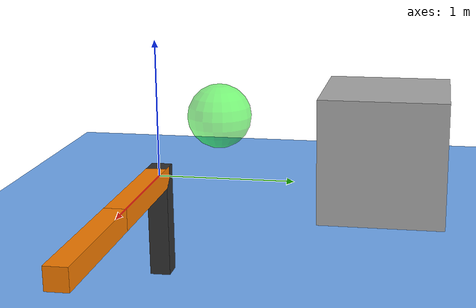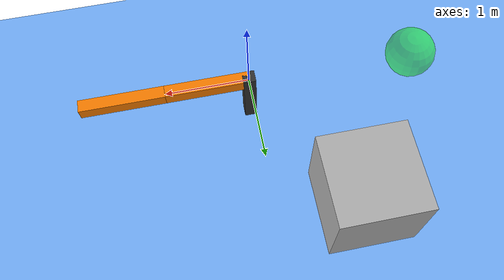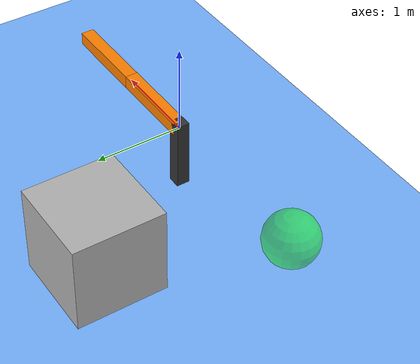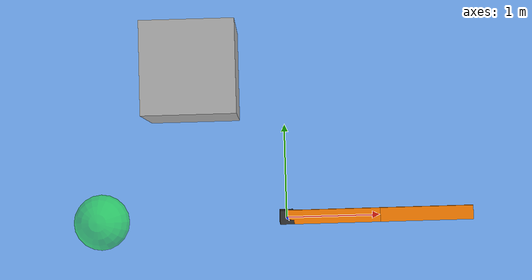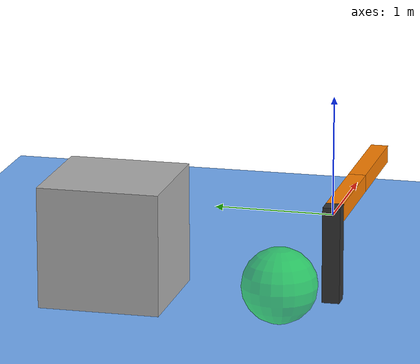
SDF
<?xml version="1.0" ?>
<sdf version='1.6'>
<world name='world'>
    <physics type="ode">
      <max_step_size>0.004</max_step_size>
      <max_contacts>5</max_contacts>
      <ode>
        <solver>
          <iters>25</iters>
          <type>world</type>
          <sor>1.3</sor>
          <use_dynamic_moi_rescaling>0</use_dynamic_moi_rescaling>
        </solver>
        <constraints>
          <cfm>0.0</cfm>
          <contact_surface_layer>0.0</contact_surface_layer>
        </constraints>
      </ode>
    </physics>

    <!-- The sphere-shaped goal area the robot has to reach -->
    <model name='GoalArea'>
      <pose frame=''>-2.0 0.0 0.0 0 -0 0</pose>
      <static>1</static>
      <link name='GoalArea_link'>
        <visual name='GoalArea_visual'>
          <pose>0 0 0 0 0 0</pose>
          <geometry>
            <sphere>
              <radius>0.3</radius>
            </sphere>
          </geometry>
          <material>
            <ambient>0 1 0 0.5</ambient>
          </material>
        </visual>
        <self_collide>0</self_collide>
        <kinematic>0</kinematic>
      </link>
    </model>

    <include>
      <uri>model://2DOFManipulator</uri>
      <pose>0.0 0.0 0.0 0 0 0</pose>
    </include>

  <model name="floor">
      <pose frame=''>0 0 -0.75 0 0 0</pose>
      <static>1</static>
      <link name="floorlink">
      <visual name="floorvisual">
        <geometry>
          <box>
            <size>100 100 0.005</size>
          </box>
        </geometry>
        <material>
            <ambient>0.46274509803921568627 0.6980392156862745098 1 1.0</ambient>
          </material>
      </visual>
      <collision name="floorcollision">
        <geometry>
          <box>
            <size>10 10 0.005</size>
          </box>
        </geometry>
      </collision>
    </link>
  </model>

  <model name="base">
      <pose frame=''>0 0 -0.425 0 0 0</pose>
      <static>1</static>
      <link name="baselink">
      <visual name="basevisual">
        <geometry>
          <box>
            <size>0.15 0.15 1</size>
          </box>
        </geometry>
        <material>
          <ambient>0.2 0.2 0.2 1.0</ambient>
        </material>
      </visual>
    </link>
  </model>

  <model name="box1">
      <pose frame=''>-1.0 1.6 0.0 0 0 0</pose>
      <static>1</static>
      <link name="box1link">
      <visual name="box1visual">
        <geometry>
          <box>
            <size>1 1 1</size>
          </box>
        </geometry>
        <material>
          <ambient>0.7 0.7 0.7 1.0</ambient>
        </material>
      </visual>
      <collision name="box1collision">
        <geometry>
          <box>
            <size>1 1 1</size>
          </box>
        </geometry>
      </collision>
    </link>
  </model>
</world>
</sdf>

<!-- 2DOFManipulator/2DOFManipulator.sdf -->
<sdf version='1.6'>
  <model name='2DOFManipulator'>
    <link name="link1">
      <pose frame=''>0 0 0 0 0 0</pose>
      <inertial>
        <pose frame='link1'>0.5 0 0 0 0 0</pose>
        <mass>1.0</mass>
        <inertia>
          <ixx>0.005</ixx>
          <ixy>0.</ixy>
          <ixz>0.0</ixz>
          <iyy>0.006</iyy>
          <izz>0.003</izz>
        </inertia>
      </inertial>
      <collision name='link1_collision'>
        <pose frame=''>0.5 0 0 0 0 0</pose>
        <geometry>
          <box>
            <size>1 0.15 0.15</size>
          </box>
        </geometry>
      </collision>
      <visual name='link1_visual'>
        <pose frame=''>0.5 0 0 0 0 0</pose>
        <geometry>
          <box>
            <size>1 0.15 0.15</size>
          </box>
        </geometry>
        <material>
          <ambient>1.0 0.5019607843137254902 0 1.0</ambient>
        </material>
      </visual>
      <self_collide>0</self_collide>
    </link>

    <link name="link2">
      <pose frame=''>1 0 0 0 0 0</pose>
      <inertial>
        <pose frame='link2'>0.5 0 0 0 0 0</pose>
        <mass>1.0</mass>
        <inertia>
          <ixx>0.005</ixx>
          <ixy>0.</ixy>
          <ixz>0.0</ixz>
          <iyy>0.006</iyy>
          <izz>0.003</izz>
        </inertia>
      </inertial>
      <collision name='link2_collision'>
        <pose frame=''>0.5 0 0 0 0 0</pose>
        <geometry>
          <box>
            <size>1 0.15 0.15</size>
          </box>
        </geometry>
      </collision>
      <visual name='link2_visual'>
        <pose frame=''>0.5 0 0 0 0 0</pose>
        <geometry>
          <box>
            <size>1 0.15 0.15</size>
          </box>
        </geometry>
        <material>
          <ambient>1.0 0.5019607843137254902 0 1.0</ambient>
        </material>
      </visual>
      <self_collide>0</self_collide>
    </link>

    <joint name="joint1" type="revolute">
      <parent>world</parent>
      <child>link1</child>
      <axis>
        <xyz>0 0 1</xyz>
        <limit>
          <lower>-1.5</lower>
          <upper>4.0</upper>
          <velocity>3</velocity>
          <effort>10</effort>
        </limit>
        <dynamics>
          <damping>1.0</damping>
          <friction>0.2</friction>
        </dynamics>
        <use_parent_model_frame>1</use_parent_model_frame>
      </axis>
      <physics>
        <ode>
          <implicit_spring_damper>1</implicit_spring_damper>
          <bounce>0</bounce>
          <limit>
            <erp>0.9</erp>
            <cfm>0</cfm>
          </limit>
        </ode>
      </physics>
    </joint>

    <joint name="joint2" type="revolute">
      <parent>link1</parent>
      <child>link2</child>
      <axis>
        <xyz>0 1 0</xyz>
        <limit>
          <lower>-3.14</lower>
          <upper>4.14</upper>
          <velocity>2</velocity>
          <effort>8</effort>
        </limit>
        <dynamics>
          <damping>1.0</damping>
          <friction>0.2</friction>
        </dynamics>
        <use_parent_model_frame>1</use_parent_model_frame>
      </axis>
      <physics>
        <ode>
          <implicit_spring_damper>1</implicit_spring_damper>
          <bounce>0</bounce>
          <limit>
            <erp>0.9</erp>
            <cfm>0</cfm>
          </limit>
        </ode>
      </physics>
    </joint>
  </model>
</sdf>
